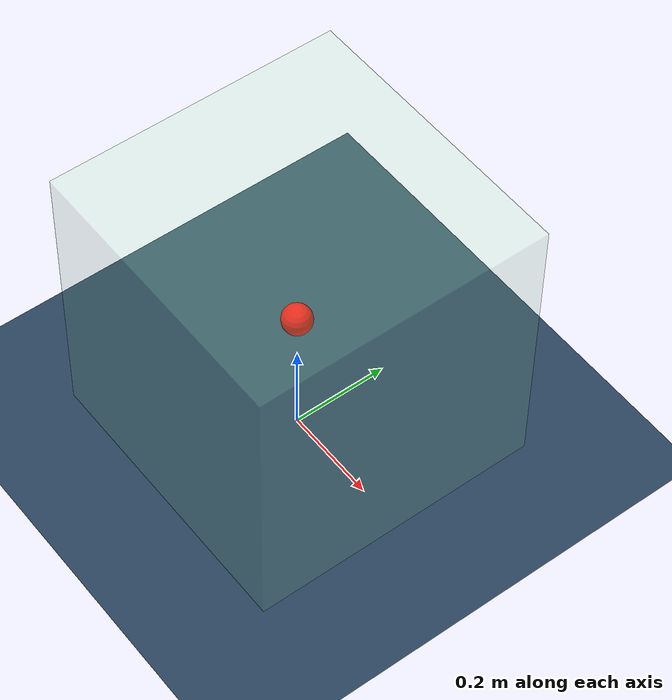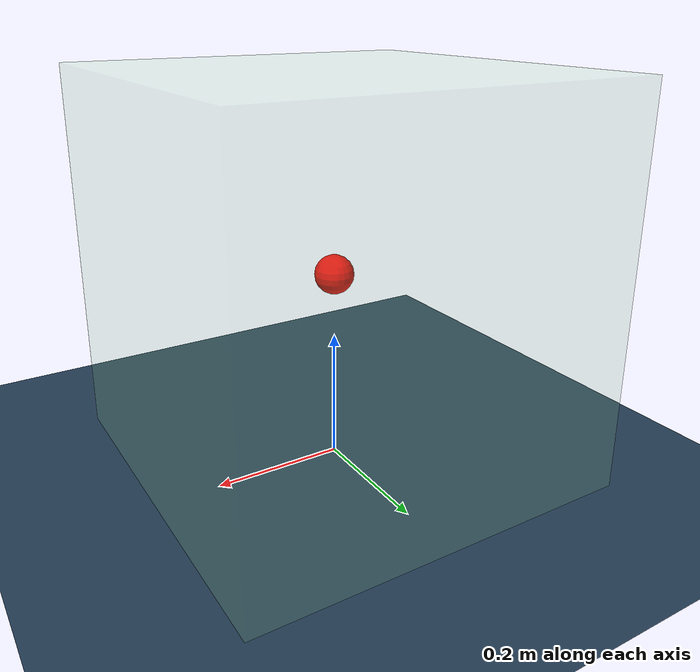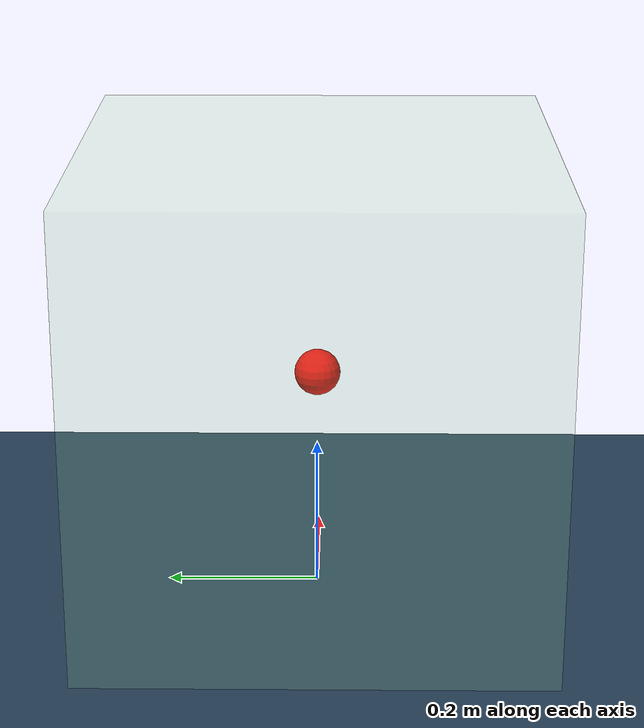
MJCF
<?xml version="1.0" ?>
<mujoco model="iiwa14_scene">

    <statistic center="0.2 0 0.2" extent="1.0"/>

    <visual>
        <headlight diffuse="0.3 0.3 0.3" ambient="0.2 0.2 0.2" specular="0 0 0"/>
        <rgba haze="0.15 0.25 0.35 1"/>
        <global azimuth="-120" elevation="-20"  offwidth="1280" offheight="720"/>
        <quality shadowsize="0"/>
    </visual>

    <asset>
        <texture type="skybox" builtin="gradient" rgb1="0.3 0.5 0.7" rgb2="0 0 0" width="512" height="3072"/>
        <texture type="2d" name="groundplane" builtin="checker" mark="edge" rgb1="0.2 0.3 0.4" rgb2="0.1 0.2 0.3"
          markrgb="0.8 0.8 0.8" width="300" height="300"/>
        <material name="groundplane" texture="groundplane" texuniform="true" texrepeat="5 5" reflectance="0.2"/>

            <texture type="2d" name="floor_texture" builtin="checker" mark="edge" rgb1="0.2 0.3 0.4" rgb2="0.1 0.2 0.3"
          markrgb="0.8 0.8 0.8" width="300" height="300"/>

        <material name="floor_material" texture="floor_texture" texuniform="true" texrepeat="5 5" reflectance="0.2"/>

    </asset>

    <worldbody>

        <light pos="0 0 4.5" dir="0 0 -1" directional="true"/>
        <light pos="0 0 -4.5" dir="0 0 1" directional="true"/>

         <light pos="0 4.5 0" dir="0 -1 0" directional="true"/>
        <light pos="0 -4.5 0" dir="0 1 0" directional="true"/>

         <light pos="4.5 0 0" dir="-1 0 0" directional="true"/>
        <light pos="-4.5 0 0" dir="1 0 0" directional="true"/>

        <geom type="box" size="0.3 0.3 0.3" rgba="0.6 0.9 0.6 0.2" pos="0 0 0.3"/>

    <site name="target" type="sphere" pos="0.0 0.0 0.3" size="0.03" rgba="1 0 0 1" />

            <geom name="floor" size="1 1 0.05" type="plane" material="floor_material"/>

    </worldbody>
</mujoco>
